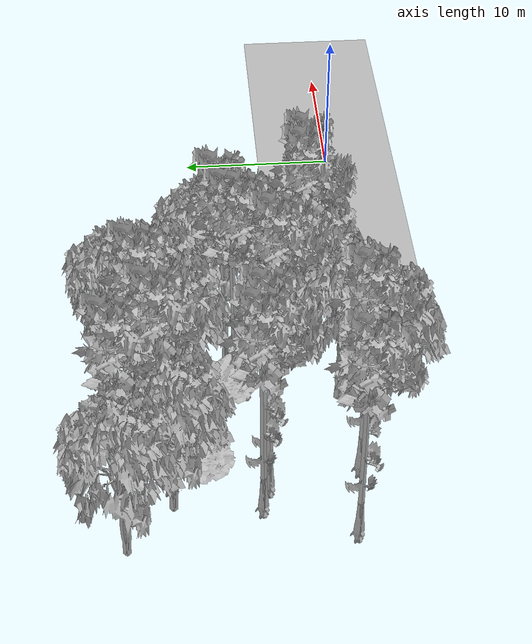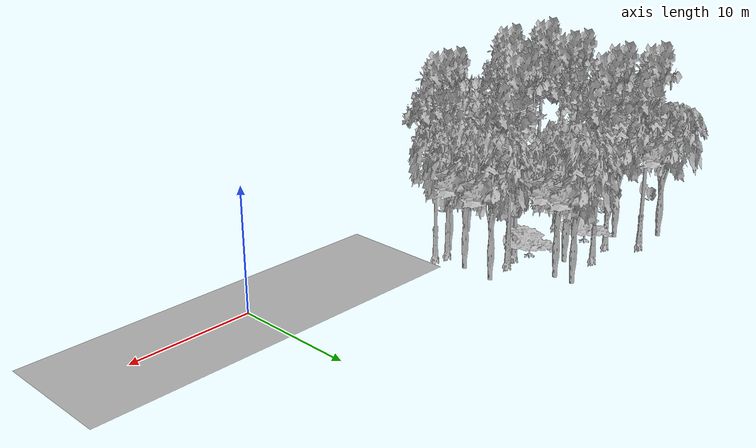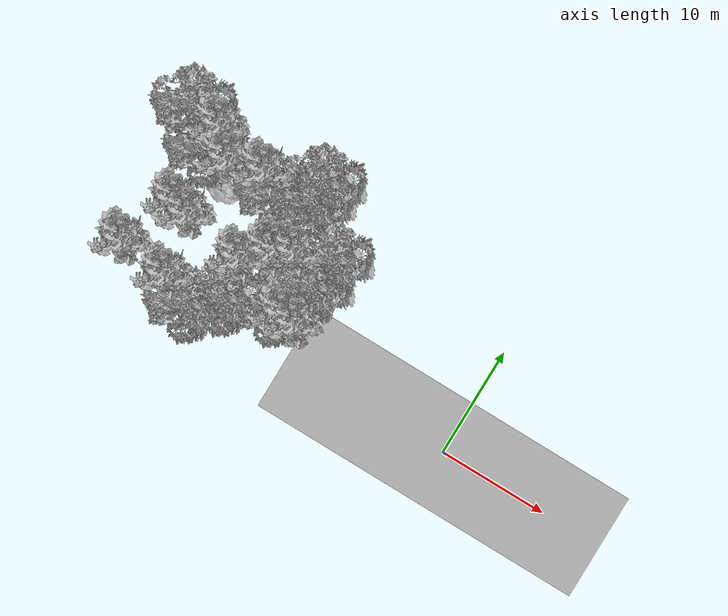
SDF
<sdf version="1.7">
 <world name="default">
  <model name="ground_plane">
   <static>1</static>
   <link name="link">
    <collision name="collision">
     <pose>-50 0 0 0 -0 0</pose>
     <geometry><plane><normal>0 0 1</normal><size>100 100</size></plane></geometry>
     <surface><contact><ode><min_depth>0.01</min_depth><max_vel>0</max_vel></ode></contact></surface>
    </collision>
    <visual name="grass">
     <cast_shadows>0</cast_shadows>
     <geometry>
      <mesh>
       <scale>0.5814285714285714 0.18142857142857144 0.1</scale>
       <uri>file://grass_plane/meshes/grass_plane.dae</uri>
      </mesh>
     </geometry>
    </visual>
   </link>
  </model>
  <model name="Tree 37">
   <static>1</static>
   <pose>-22.42477993910186 8.73177841220993 0 1.57079 -0 0</pose>
   <link name="link">
    <collision name="collision">
     <geometry><mesh><scale>4 2.5 4</scale><uri>model://tree_1/meshes/tree_1.obj</uri></mesh></geometry>
    </collision>
    <visual name="visual">
     <geometry><mesh><scale>4 2.5 4</scale><uri>model://tree_1/meshes/tree_1.obj</uri></mesh></geometry>
    </visual>
   </link>
  </model>
  <model name="Tree 51">
   <static>1</static>
   <pose>-16.72435800502567 9.23620157318754 0 1.57079 -0 0</pose>
   <link name="link">
    <collision name="collision">
     <geometry><mesh><scale>3.5 5 3.5</scale><uri>model://tree_2/meshes/tree_2.obj</uri></mesh></geometry>
    </collision>
    <visual name="visual">
     <geometry><mesh><scale>3.5 5 3.5</scale><uri>model://tree_2/meshes/tree_2.obj</uri></mesh></geometry>
    </visual>
   </link>
  </model>
  <model name="Tree 53">
   <static>1</static>
   <pose>-16.991508887009395 3.1494003061655924 0 1.57079 -0 0</pose>
   <link name="link">
    <collision name="collision">
     <geometry><mesh><scale>3.5 5 3.5</scale><uri>model://tree_9/meshes/tree_9.obj</uri></mesh></geometry>
    </collision>
    <visual name="visual">
     <geometry><mesh><scale>3.5 5 3.5</scale><uri>model://tree_9/meshes/tree_9.obj</uri></mesh></geometry>
    </visual>
   </link>
  </model>
  <model name="Tree 55">
   <static>1</static>
   <pose>-21.872445120083867 7.160355748071019 0 1.57079 -0 0</pose>
   <link name="link">
    <collision name="collision">
     <geometry><mesh><scale>3.5 5 3.5</scale><uri>model://tree_9/meshes/tree_9.obj</uri></mesh></geometry>
    </collision>
    <visual name="visual">
     <geometry><mesh><scale>3.5 5 3.5</scale><uri>model://tree_9/meshes/tree_9.obj</uri></mesh></geometry>
    </visual>
   </link>
  </model>
  <model name="Tree 56">
   <static>1</static>
   <pose>-23.486659413663684 11.520179222853876 0 1.57079 -0 0</pose>
   <link name="link">
    <collision name="collision">
     <geometry><mesh><scale>3.5 5 3.5</scale><uri>model://tree_2/meshes/tree_2.obj</uri></mesh></geometry>
    </collision>
    <visual name="visual">
     <geometry><mesh><scale>3.5 5 3.5</scale><uri>model://tree_2/meshes/tree_2.obj</uri></mesh></geometry>
    </visual>
   </link>
  </model>
  <model name="Tree 63">
   <static>1</static>
   <pose>-33.44967682732476 14.292488591595887 0 1.57079 -0 0</pose>
   <link name="link">
    <collision name="collision">
     <geometry><mesh><scale>3.5 5 3.5</scale><uri>model://tree_2/meshes/tree_2.obj</uri></mesh></geometry>
    </collision>
    <visual name="visual">
     <geometry><mesh><scale>3.5 5 3.5</scale><uri>model://tree_2/meshes/tree_2.obj</uri></mesh></geometry>
    </visual>
   </link>
  </model>
  <model name="Tree 69">
   <static>1</static>
   <pose>-21.60116722320341 7.794739982756468 0 1.57079 -0 0</pose>
   <link name="link">
    <collision name="collision">
     <geometry><mesh><scale>3.5 5 3.5</scale><uri>model://tree_9/meshes/tree_9.obj</uri></mesh></geometry>
    </collision>
    <visual name="visual">
     <geometry><mesh><scale>3.5 5 3.5</scale><uri>model://tree_9/meshes/tree_9.obj</uri></mesh></geometry>
    </visual>
   </link>
  </model>
  <model name="Tree 71">
   <static>1</static>
   <pose>-28.243124983899808 1.0530893934686425 0 1.57079 -0 0</pose>
   <link name="link">
    <collision name="collision">
     <geometry><mesh><scale>3.5 5 3.5</scale><uri>model://tree_9/meshes/tree_9.obj</uri></mesh></geometry>
    </collision>
    <visual name="visual">
     <geometry><mesh><scale>3.5 5 3.5</scale><uri>model://tree_9/meshes/tree_9.obj</uri></mesh></geometry>
    </visual>
   </link>
  </model>
  <model name="Tree 73">
   <static>1</static>
   <pose>-30.730541087219702 6.754065405681249 0 1.57079 -0 0</pose>
   <link name="link">
    <collision name="collision">
     <geometry><mesh><scale>3.5 5 3.5</scale><uri>model://tree_9/meshes/tree_9.obj</uri></mesh></geometry>
    </collision>
    <visual name="visual">
     <geometry><mesh><scale>3.5 5 3.5</scale><uri>model://tree_9/meshes/tree_9.obj</uri></mesh></geometry>
    </visual>
   </link>
  </model>
  <model name="Tree 84">
   <static>1</static>
   <pose>-32.75522785681848 1.6694224545257974 0 1.57079 -0 0</pose>
   <link name="link">
    <collision name="collision">
     <geometry><mesh><scale>3.5 5 3.5</scale><uri>model://tree_9/meshes/tree_9.obj</uri></mesh></geometry>
    </collision>
    <visual name="visual">
     <geometry><mesh><scale>3.5 5 3.5</scale><uri>model://tree_9/meshes/tree_9.obj</uri></mesh></geometry>
    </visual>
   </link>
  </model>
  <model name="Tree 113">
   <static>1</static>
   <pose>-28.83321609251505 11.94003335373807 0 1.57079 -0 0</pose>
   <link name="link">
    <collision name="collision">
     <geometry><mesh><scale>3.5 5 3.5</scale><uri>model://tree_9/meshes/tree_9.obj</uri></mesh></geometry>
    </collision>
    <visual name="visual">
     <geometry><mesh><scale>3.5 5 3.5</scale><uri>model://tree_9/meshes/tree_9.obj</uri></mesh></geometry>
    </visual>
   </link>
  </model>
  <model name="Tree 115">
   <static>1</static>
   <pose>-22.923245364739397 1.7038899878995473 0 1.57079 -0 0</pose>
   <link name="link">
    <collision name="collision">
     <geometry><mesh><scale>3.5 5 3.5</scale><uri>model://tree_2/meshes/tree_2.obj</uri></mesh></geometry>
    </collision>
    <visual name="visual">
     <geometry><mesh><scale>3.5 5 3.5</scale><uri>model://tree_2/meshes/tree_2.obj</uri></mesh></geometry>
    </visual>
   </link>
  </model>
  <model name="Tree 118">
   <static>1</static>
   <pose>-29.359946945149986 6.324889846735328 0 1.57079 -0 0</pose>
   <link name="link">
    <collision name="collision">
     <geometry><mesh><scale>3.5 5 3.5</scale><uri>model://tree_9/meshes/tree_9.obj</uri></mesh></geometry>
    </collision>
    <visual name="visual">
     <geometry><mesh><scale>3.5 5 3.5</scale><uri>model://tree_9/meshes/tree_9.obj</uri></mesh></geometry>
    </visual>
   </link>
  </model>
  <model name="Tree 151">
   <static>1</static>
   <pose>-25.679282079979643 12.757698942501651 0 1.57079 -0 0</pose>
   <link name="link">
    <collision name="collision">
     <geometry><mesh><scale>3.5 5 3.5</scale><uri>model://tree_9/meshes/tree_9.obj</uri></mesh></geometry>
    </collision>
    <visual name="visual">
     <geometry><mesh><scale>3.5 5 3.5</scale><uri>model://tree_9/meshes/tree_9.obj</uri></mesh></geometry>
    </visual>
   </link>
  </model>
  <model name="Tree 153">
   <static>1</static>
   <pose>-20.071468756662 8.274634943746559 0 1.57079 -0 0</pose>
   <link name="link">
    <collision name="collision">
     <geometry><mesh><scale>3.5 5 3.5</scale><uri>model://tree_9/meshes/tree_9.obj</uri></mesh></geometry>
    </collision>
    <visual name="visual">
     <geometry><mesh><scale>3.5 5 3.5</scale><uri>model://tree_9/meshes/tree_9.obj</uri></mesh></geometry>
    </visual>
   </link>
  </model>
  <model name="Tree 189">
   <static>1</static>
   <pose>-25.211678865986165 -0.3625660698480395 0 1.57079 -0 0</pose>
   <link name="link">
    <collision name="collision">
     <geometry><mesh><scale>3.5 5 3.5</scale><uri>model://tree_2/meshes/tree_2.obj</uri></mesh></geometry>
    </collision>
    <visual name="visual">
     <geometry><mesh><scale>3.5 5 3.5</scale><uri>model://tree_2/meshes/tree_2.obj</uri></mesh></geometry>
    </visual>
   </link>
  </model>
  <model name="Tree 197">
   <static>1</static>
   <pose>-30.631387020927573 11.702708456032365 0 1.57079 -0 0</pose>
   <link name="link">
    <collision name="collision">
     <geometry><mesh><scale>3.5 5 3.5</scale><uri>model://tree_2/meshes/tree_2.obj</uri></mesh></geometry>
    </collision>
    <visual name="visual">
     <geometry><mesh><scale>3.5 5 3.5</scale><uri>model://tree_2/meshes/tree_2.obj</uri></mesh></geometry>
    </visual>
   </link>
  </model>
  <model name="Tree 200">
   <static>1</static>
   <pose>-23.743600315950214 5.48839700064309 0 1.57079 -0 0</pose>
   <link name="link">
    <collision name="collision">
     <geometry><mesh><scale>3.5 5 3.5</scale><uri>model://tree_9/meshes/tree_9.obj</uri></mesh></geometry>
    </collision>
    <visual name="visual">
     <geometry><mesh><scale>3.5 5 3.5</scale><uri>model://tree_9/meshes/tree_9.obj</uri></mesh></geometry>
    </visual>
   </link>
  </model>
  <model name="Tree 212">
   <static>1</static>
   <pose>-30.809589093571514 14.0373089234788 0 1.57079 -0 0</pose>
   <link name="link">
    <collision name="collision">
     <geometry><mesh><scale>3.5 5 3.5</scale><uri>model://tree_9/meshes/tree_9.obj</uri></mesh></geometry>
    </collision>
    <visual name="visual">
     <geometry><mesh><scale>3.5 5 3.5</scale><uri>model://tree_9/meshes/tree_9.obj</uri></mesh></geometry>
    </visual>
   </link>
  </model>
  <model name="Tree 220">
   <static>1</static>
   <pose>-28.06344891685119 10.30791171084979 0 1.57079 -0 0</pose>
   <link name="link">
    <collision name="collision">
     <geometry><mesh><scale>4 2.5 4</scale><uri>model://tree_1/meshes/tree_1.obj</uri></mesh></geometry>
    </collision>
    <visual name="visual">
     <geometry><mesh><scale>4 2.5 4</scale><uri>model://tree_1/meshes/tree_1.obj</uri></mesh></geometry>
    </visual>
   </link>
  </model>
  <model name="Tree 235">
   <static>1</static>
   <pose>-16.94961898494727 6.412550956851625 0 1.57079 -0 0</pose>
   <link name="link">
    <collision name="collision">
     <geometry><mesh><scale>3.5 5 3.5</scale><uri>model://tree_2/meshes/tree_2.obj</uri></mesh></geometry>
    </collision>
    <visual name="visual">
     <geometry><mesh><scale>3.5 5 3.5</scale><uri>model://tree_2/meshes/tree_2.obj</uri></mesh></geometry>
    </visual>
   </link>
  </model>
  <model name="Tree 243">
   <static>1</static>
   <pose>-20.58237808664602 14.292293696603448 0 1.57079 -0 0</pose>
   <link name="link">
    <collision name="collision">
     <geometry><mesh><scale>3.5 5 3.5</scale><uri>model://tree_2/meshes/tree_2.obj</uri></mesh></geometry>
    </collision>
    <visual name="visual">
     <geometry><mesh><scale>3.5 5 3.5</scale><uri>model://tree_2/meshes/tree_2.obj</uri></mesh></geometry>
    </visual>
   </link>
  </model>
  <model name="Tree 248">
   <static>1</static>
   <pose>-18.242715651791148 3.3708104985084297 0 1.57079 -0 0</pose>
   <link name="link">
    <collision name="collision">
     <geometry><mesh><scale>3.5 5 3.5</scale><uri>model://tree_9/meshes/tree_9.obj</uri></mesh></geometry>
    </collision>
    <visual name="visual">
     <geometry><mesh><scale>3.5 5 3.5</scale><uri>model://tree_9/meshes/tree_9.obj</uri></mesh></geometry>
    </visual>
   </link>
  </model>
  <model name="Tree 263">
   <static>1</static>
   <pose>-18.816858611376702 3.163705197498931 0 1.57079 -0 0</pose>
   <link name="link">
    <collision name="collision">
     <geometry><mesh><scale>3.5 5 3.5</scale><uri>model://tree_2/meshes/tree_2.obj</uri></mesh></geometry>
    </collision>
    <visual name="visual">
     <geometry><mesh><scale>3.5 5 3.5</scale><uri>model://tree_2/meshes/tree_2.obj</uri></mesh></geometry>
    </visual>
   </link>
  </model>
  <model name="Tree 284">
   <static>1</static>
   <pose>-20.613132220546948 12.654238814165808 0 1.57079 -0 0</pose>
   <link name="link">
    <collision name="collision">
     <geometry><mesh><scale>3.5 5 3.5</scale><uri>model://tree_2/meshes/tree_2.obj</uri></mesh></geometry>
    </collision>
    <visual name="visual">
     <geometry><mesh><scale>3.5 5 3.5</scale><uri>model://tree_2/meshes/tree_2.obj</uri></mesh></geometry>
    </visual>
   </link>
  </model>
 </world>
</sdf>
